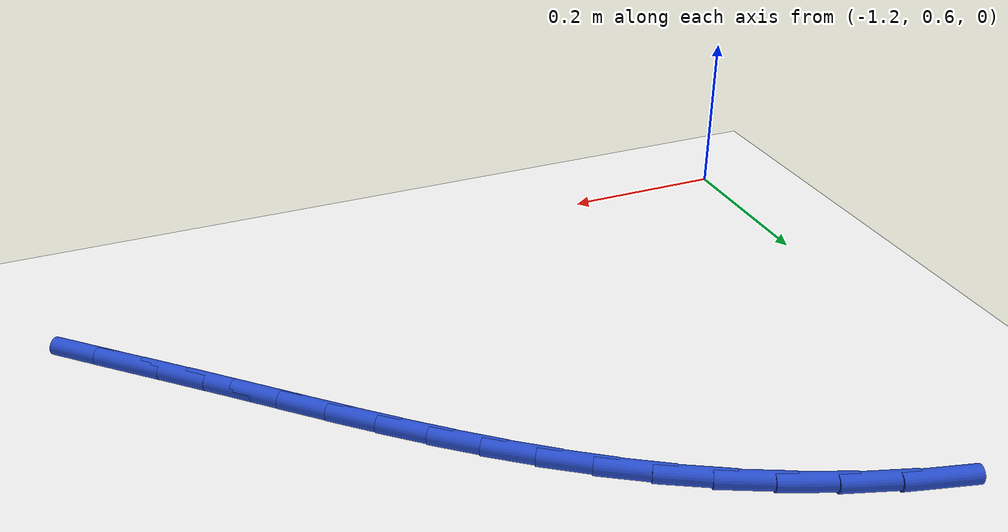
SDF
<sdf version="1.6">
 <world name="default">
  <model name="ground_plane">
   <static>1</static>
   <link name="link">
    <collision name="collision">
     <geometry><plane><normal>0 0 1</normal><size>100 100</size></plane></geometry>
     <surface><friction><ode><mu>100</mu><mu2>50</mu2></ode></friction></surface>
    </collision>
    <visual name="visual">
     <cast_shadows>0</cast_shadows>
     <geometry><plane><normal>0 0 1</normal><size>100 100</size></plane></geometry>
     <material>
      <script><uri>file://media/materials/scripts/gazebo.material</uri><name>Gazebo/WhiteGlow</name></script>
     </material>
    </visual>
   </link>
  </model>
  <model name="line">
   <link name="link_15">
    <pose>-0.34352950417175143 0.7272701945383522 0.01 0 1.57 -0.736120154852832</pose>
    <collision name="collision">
     <geometry><cylinder><radius>0.01</radius><length>0.08</length></cylinder></geometry>
    </collision>
    <visual name="visual">
     <material>
      <script><name>Gazebo/Blue</name><uri>file://media/materials/scripts/gazebo.material</uri></script>
     </material>
     <geometry><cylinder><radius>0.01</radius><length>0.08</length></cylinder></geometry>
    </visual>
   </link>
   <link name="link_16">
    <pose>-0.38508783514567546 0.7649220430336079 0.01 0 1.57 -0.7309979723290629</pose>
    <collision name="collision">
     <geometry><cylinder><radius>0.01</radius><length>0.08</length></cylinder></geometry>
    </collision>
    <visual name="visual">
     <material>
      <script><name>Gazebo/Blue</name><uri>file://media/materials/scripts/gazebo.material</uri></script>
     </material>
     <geometry><cylinder><radius>0.01</radius><length>0.08</length></cylinder></geometry>
    </visual>
   </link>
   <link name="link_17">
    <pose>-0.42682499995563494 0.8023484416298431 0.01 0 1.57 -0.7351833318795895</pose>
    <collision name="collision">
     <geometry><cylinder><radius>0.01</radius><length>0.08</length></cylinder></geometry>
    </collision>
    <visual name="visual">
     <material>
      <script><name>Gazebo/Blue</name><uri>file://media/materials/scripts/gazebo.material</uri></script>
     </material>
     <geometry><cylinder><radius>0.01</radius><length>0.08</length></cylinder></geometry>
    </visual>
   </link>
   <link name="link_18">
    <pose>-0.4682810884269052 0.839837002527427 0.01 0 1.57 -0.7422132055893919</pose>
    <collision name="collision">
     <geometry><cylinder><radius>0.01</radius><length>0.08</length></cylinder></geometry>
    </collision>
    <visual name="visual">
     <material>
      <script><name>Gazebo/Blue</name><uri>file://media/materials/scripts/gazebo.material</uri></script>
     </material>
     <geometry><cylinder><radius>0.01</radius><length>0.08</length></cylinder></geometry>
    </visual>
   </link>
   <link name="link_19">
    <pose>-0.509292931802752 0.8774512683393224 0.01 0 1.57 -0.7427341479474407</pose>
    <collision name="collision">
     <geometry><cylinder><radius>0.01</radius><length>0.08</length></cylinder></geometry>
    </collision>
    <visual name="visual">
     <material>
      <script><name>Gazebo/Blue</name><uri>file://media/materials/scripts/gazebo.material</uri></script>
     </material>
     <geometry><cylinder><radius>0.01</radius><length>0.08</length></cylinder></geometry>
    </visual>
   </link>
   <link name="link_20">
    <pose>-0.5501202406780374 0.9149354652767684 0.01 0 1.57 -0.7359449308136131</pose>
    <collision name="collision">
     <geometry><cylinder><radius>0.01</radius><length>0.08</length></cylinder></geometry>
    </collision>
    <visual name="visual">
     <material>
      <script><name>Gazebo/Blue</name><uri>file://media/materials/scripts/gazebo.material</uri></script>
     </material>
     <geometry><cylinder><radius>0.01</radius><length>0.08</length></cylinder></geometry>
    </visual>
   </link>
   <link name="link_21">
    <pose>-0.5910550901153516 0.952009381125861 0.01 0 1.57 -0.7217788189576092</pose>
    <collision name="collision">
     <geometry><cylinder><radius>0.01</radius><length>0.08</length></cylinder></geometry>
    </collision>
    <visual name="visual">
     <material>
      <script><name>Gazebo/Blue</name><uri>file://media/materials/scripts/gazebo.material</uri></script>
     </material>
     <geometry><cylinder><radius>0.01</radius><length>0.08</length></cylinder></geometry>
    </visual>
   </link>
   <link name="link_22">
    <pose>-0.632389555177285 0.9883928036726954 0.01 0 1.57 -0.7002028334208865</pose>
    <collision name="collision">
     <geometry><cylinder><radius>0.01</radius><length>0.08</length></cylinder></geometry>
    </collision>
    <visual name="visual">
     <material>
      <script><name>Gazebo/Blue</name><uri>file://media/materials/scripts/gazebo.material</uri></script>
     </material>
     <geometry><cylinder><radius>0.01</radius><length>0.08</length></cylinder></geometry>
    </visual>
   </link>
   <link name="link_23">
    <pose>-0.674415710926428 1.0238055207033676 0.01 0 1.57 -0.6712416654230219</pose>
    <collision name="collision">
     <geometry><cylinder><radius>0.01</radius><length>0.08</length></cylinder></geometry>
    </collision>
    <visual name="visual">
     <material>
      <script><name>Gazebo/Blue</name><uri>file://media/materials/scripts/gazebo.material</uri></script>
     </material>
     <geometry><cylinder><radius>0.01</radius><length>0.08</length></cylinder></geometry>
    </visual>
   </link>
   <link name="link_24">
    <pose>-0.7174256324253713 1.057967320003974 0.01 0 1.57 -0.6350129056501742</pose>
    <collision name="collision">
     <geometry><cylinder><radius>0.01</radius><length>0.08</length></cylinder></geometry>
    </collision>
    <visual name="visual">
     <material>
      <script><name>Gazebo/Blue</name><uri>file://media/materials/scripts/gazebo.material</uri></script>
     </material>
     <geometry><cylinder><radius>0.01</radius><length>0.08</length></cylinder></geometry>
    </visual>
   </link>
   <link name="link_25">
    <pose>-0.7617113947367049 1.0905979893606095 0.01 0 1.57 -0.5917707905101769</pose>
    <collision name="collision">
     <geometry><cylinder><radius>0.01</radius><length>0.08</length></cylinder></geometry>
    </collision>
    <visual name="visual">
     <material>
      <script><name>Gazebo/Blue</name><uri>file://media/materials/scripts/gazebo.material</uri></script>
     </material>
     <geometry><cylinder><radius>0.01</radius><length>0.08</length></cylinder></geometry>
    </visual>
   </link>
   <link name="link_26">
    <pose>-0.807565072923019 1.1214173165593697 0.01 0 1.57 -0.5419525374441081</pose>
    <collision name="collision">
     <geometry><cylinder><radius>0.01</radius><length>0.08</length></cylinder></geometry>
    </collision>
    <visual name="visual">
     <material>
      <script><name>Gazebo/Blue</name><uri>file://media/materials/scripts/gazebo.material</uri></script>
     </material>
     <geometry><cylinder><radius>0.01</radius><length>0.08</length></cylinder></geometry>
    </visual>
   </link>
   <link name="link_27">
    <pose>-0.8552787420469048 1.1501450893863514 0.01 0 1.57 -0.4862176065844491</pose>
    <collision name="collision">
     <geometry><cylinder><radius>0.01</radius><length>0.08</length></cylinder></geometry>
    </collision>
    <visual name="visual">
     <material>
      <script><name>Gazebo/Blue</name><uri>file://media/materials/scripts/gazebo.material</uri></script>
     </material>
     <geometry><cylinder><radius>0.01</radius><length>0.08</length></cylinder></geometry>
    </visual>
   </link>
   <link name="link_28">
    <pose>-0.9051444771709518 1.176501095627649 0.01 0 1.57 -0.4254762449870489</pose>
    <collision name="collision">
     <geometry><cylinder><radius>0.01</radius><length>0.08</length></cylinder></geometry>
    </collision>
    <visual name="visual">
     <material>
      <script><name>Gazebo/Blue</name><uri>file://media/materials/scripts/gazebo.material</uri></script>
     </material>
     <geometry><cylinder><radius>0.01</radius><length>0.08</length></cylinder></geometry>
    </visual>
   </link>
   <link name="link_29">
    <pose>-0.9574534180348359 1.2002052620639563 0.01 0 1.57 -0.36269804942250566</pose>
    <collision name="collision">
     <geometry><cylinder><radius>0.01</radius><length>0.08</length></cylinder></geometry>
    </collision>
    <visual name="visual">
     <material>
      <script><name>Gazebo/Blue</name><uri>file://media/materials/scripts/gazebo.material</uri></script>
     </material>
     <geometry><cylinder><radius>0.01</radius><length>0.08</length></cylinder></geometry>
    </visual>
   </link>
   <link name="link_30">
    <pose>-1.012277198227793 1.221010135406927 0.01 0 1.57 -0.302056270521604</pose>
    <collision name="collision">
     <geometry><cylinder><radius>0.01</radius><length>0.08</length></cylinder></geometry>
    </collision>
    <visual name="visual">
     <material>
      <script><name>Gazebo/Blue</name><uri>file://media/materials/scripts/gazebo.material</uri></script>
     </material>
     <geometry><cylinder><radius>0.01</radius><length>0.08</length></cylinder></geometry>
    </visual>
   </link>
   <link name="link_31">
    <pose>-1.0691868499445172 1.238742654738983 0.01 0 1.57 -0.24293667444482808</pose>
    <collision name="collision">
     <geometry><cylinder><radius>0.01</radius><length>0.08</length></cylinder></geometry>
    </collision>
    <visual name="visual">
     <material>
      <script><name>Gazebo/Blue</name><uri>file://media/materials/scripts/gazebo.material</uri></script>
     </material>
     <geometry><cylinder><radius>0.01</radius><length>0.08</length></cylinder></geometry>
    </visual>
   </link>
  </model>
 </world>
</sdf>
